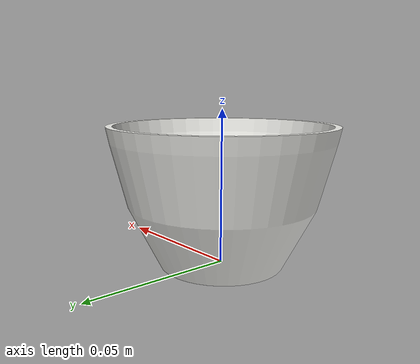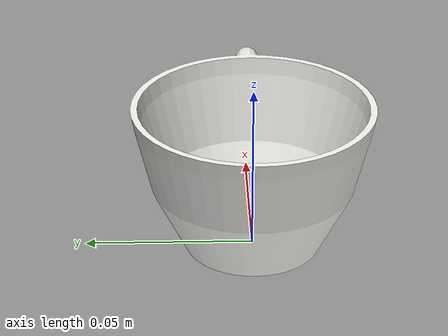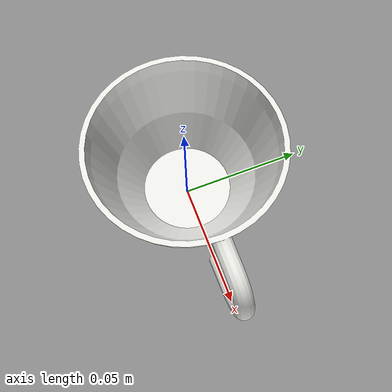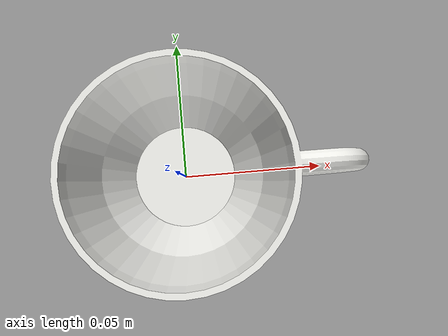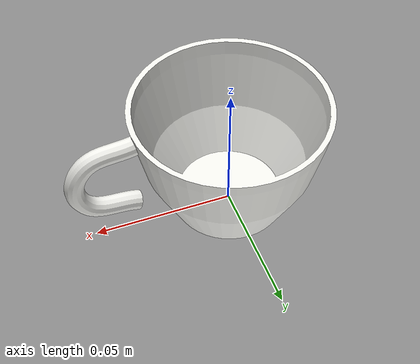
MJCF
<mujoco model="Cup_4">
  <default>
    <default class="visual">
      <geom group="2" type="mesh" contype="0" conaffinity="0"/>
    </default>
    <default class="collision">
      <geom group="3" type="mesh"/>
    </default>
  </default>
  <asset>
    <material name="Porcelain_White" specular="0.5" shininess="0.672400024" rgba="0.940000 0.940000 0.920000 1.000000"/>
    <mesh file="Cup_4.obj"/>
    <mesh file="Cup_4_collision_0.obj"/>
    <mesh file="Cup_4_collision_1.obj"/>
    <mesh file="Cup_4_collision_2.obj"/>
    <mesh file="Cup_4_collision_3.obj"/>
    <mesh file="Cup_4_collision_4.obj"/>
    <mesh file="Cup_4_collision_5.obj"/>
    <mesh file="Cup_4_collision_6.obj"/>
    <mesh file="Cup_4_collision_7.obj"/>
    <mesh file="Cup_4_collision_8.obj"/>
    <mesh file="Cup_4_collision_9.obj"/>
    <mesh file="Cup_4_collision_10.obj"/>
    <mesh file="Cup_4_collision_11.obj"/>
    <mesh file="Cup_4_collision_12.obj"/>
    <mesh file="Cup_4_collision_13.obj"/>
    <mesh file="Cup_4_collision_14.obj"/>
    <mesh file="Cup_4_collision_15.obj"/>
  </asset>
  <worldbody>
    <body name="Cup_4">
      <geom material="Porcelain_White" mesh="Cup_4" class="visual"/>
      <geom mesh="Cup_4_collision_0" rgba="0.11678706188428412 0.0815366633306277 0.111142945080141 1" class="collision"/>
      <geom mesh="Cup_4_collision_1" rgba="0.43845467378580594 0.42764186451978137 0.14733771908612658 1" class="collision"/>
      <geom mesh="Cup_4_collision_2" rgba="0.48700665097733886 0.42131309020840335 0.30616362337452807 1" class="collision"/>
      <geom mesh="Cup_4_collision_3" rgba="0.15543852788782286 0.2082115393331767 0.8892036597127106 1" class="collision"/>
      <geom mesh="Cup_4_collision_4" rgba="0.8379284485286993 0.3020771250668961 0.050870150455841645 1" class="collision"/>
      <geom mesh="Cup_4_collision_5" rgba="0.5733557709393935 0.07679731615848073 0.6893053598374802 1" class="collision"/>
      <geom mesh="Cup_4_collision_6" rgba="0.8113641079538834 0.8798817959244245 0.23839671643399307 1" class="collision"/>
      <geom mesh="Cup_4_collision_7" rgba="0.3613150387364168 0.6974636464543732 0.4392711824424871 1" class="collision"/>
      <geom mesh="Cup_4_collision_8" rgba="0.17337240292049594 0.25284234855630994 0.5873389206986968 1" class="collision"/>
      <geom mesh="Cup_4_collision_9" rgba="0.4028469098797911 0.5642900945977899 0.8627059051679095 1" class="collision"/>
      <geom mesh="Cup_4_collision_10" rgba="0.011901006721327767 0.9684743053015848 0.5671417857510831 1" class="collision"/>
      <geom mesh="Cup_4_collision_11" rgba="0.8904529476329052 0.34635983828090056 0.406632069347872 1" class="collision"/>
      <geom mesh="Cup_4_collision_12" rgba="0.9654276902662405 0.8316609564732363 0.10946007769171084 1" class="collision"/>
      <geom mesh="Cup_4_collision_13" rgba="0.07538557364372123 0.3078775962078606 0.7609742725276278 1" class="collision"/>
      <geom mesh="Cup_4_collision_14" rgba="0.897143101897716 0.5220585158860598 0.7835138951033553 1" class="collision"/>
      <geom mesh="Cup_4_collision_15" rgba="0.7168328905092045 0.22856624348328003 0.02043762412189354 1" class="collision"/>
    </body>
  </worldbody>
</mujoco>
